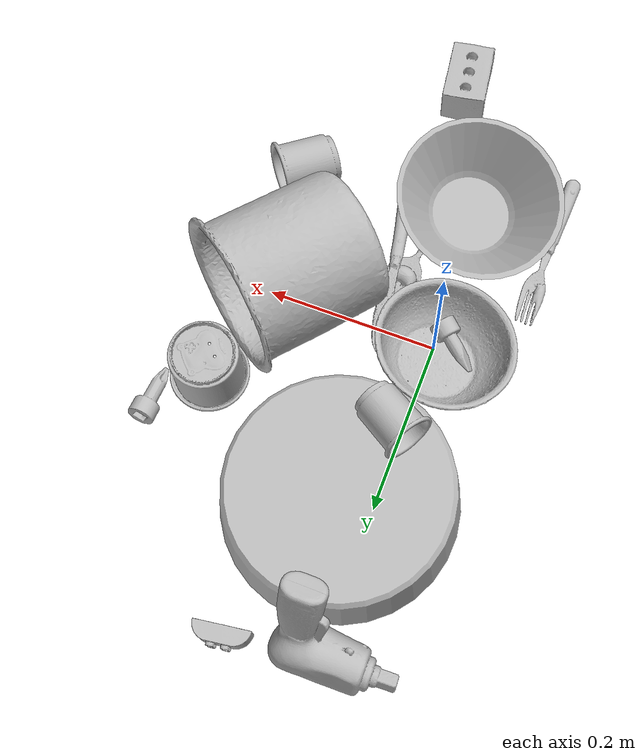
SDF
<sdf version="1.4">
  <world name="default">
    <light name="light1" type="point">
      <pose>0 0 1 0 0 0</pose>
      <diffuse>3 3 3 1</diffuse>
      <specular>3 3 3 1</specular>
    </light>
    <light name="light2" type="point">
      <pose>0 0.5 2 0 0 0</pose>
      <diffuse>1 1 1 1</diffuse>
      <specular>1 1 1 1</specular>
    </light>
    <light name="light3" type="point">
      <pose>0 0.5 2 0 0 0</pose>
      <diffuse>3 3 3 1</diffuse>
      <specular>3 3 3 1</specular>
    </light>
    <scene>
      <ambient>0.7 0.7 0.7</ambient>
    </scene>
    <model name="plate1">
      <link name="link_plate1">
        <collision name="default">
          <geometry>
            <mesh>
              <uri>model://pan_tefal/collision_meshes/collision.obj</uri>
              <scale>1.0 1.0 1.0</scale>
            </mesh>
          </geometry>
          <surface>
            <friction>
              <ode>
                <mu>0.5</mu>
                <mu2>0.5</mu2>
              </ode>
            </friction>
          <contact>
        <ode>
            <max_vel>0</max_vel>
            <min_depth>0.0001</min_depth>
            <kp>1e8</kp>
        </ode>
    </contact></surface>
        </collision>
        <visual name="default">
          <geometry>
            <mesh>
              <uri>model://pan_tefal/visual_meshes/visual.dae</uri>
              <scale>1.0 1.0 1.0</scale>
            </mesh>
          </geometry>
        </visual>
        <inertial>
          <mass>1.356081485748291</mass>
          <pose>-0.00018001878925133497 3.2792810088722035e-05 -0.008514934219419956 0.000819032333381865 -0.0003301471985614655 -0.33185384828338066</pose>
          <inertia>
            <ixx>0.009360965</ixx>
            <iyy>0.009421317</iyy>
            <izz>0.017231734</izz>
            <ixy>0</ixy>
            <ixz>0</ixz>
            <iyz>0</iyz>
          </inertia>
        </inertial>
      </link>
      <pose>0.036617081612348557 0.20486468076705933 0.03782201185822487 3.1415925545765546 2.702579169850521e-08 2.574027518876043</pose>
    </model>
    <model name="cup1">
      <link name="link_cup1">
        <collision name="default">
          <geometry>
            <mesh>
              <uri>model://mug/collision_meshes/collision.obj</uri>
              <scale>2.0 2.0 2.0</scale>
            </mesh>
          </geometry>
          <surface>
            <friction>
              <ode>
                <mu>0.5</mu>
                <mu2>0.5</mu2>
              </ode>
            </friction>
          <contact>
        <ode>
            <max_vel>0</max_vel>
            <min_depth>0.0001</min_depth>
            <kp>1e8</kp>
        </ode>
    </contact></surface>
        </collision>
        <visual name="default">
          <geometry>
            <mesh>
              <uri>model://mug/visual_meshes/visual.dae</uri>
              <scale>2.0 2.0 2.0</scale>
            </mesh>
          </geometry>
        </visual>
        <inertial>
          <mass>1.425228476524353</mass>
          <pose>0.019143342971801758 0.0016286519821733236 -0.021894657984375954 -0.12983169455958588 0.08737743422724535 0.05507285753370488</pose>
          <inertia>
            <ixx>0.005662833</ixx>
            <iyy>0.0063250507</iyy>
            <izz>0.0073150056</izz>
            <ixy>0</ixy>
            <ixz>0</ixz>
            <iyz>0</iyz>
          </inertia>
        </inertial>
      </link>
      <pose>0.18721047043800354 -0.018541429191827774 0.07338301092386246 1.4728046089953337 -0.5622074144993375 2.507778200625545</pose>
    </model>
    <model name="silverware1">
      <link name="link_silverware1">
        <collision name="default">
          <geometry>
            <mesh>
              <uri>model://spoon/collision_meshes/collision.obj</uri>
              <scale>1.0 1.0 1.0</scale>
            </mesh>
          </geometry>
          <surface>
            <friction>
              <ode>
                <mu>0.5</mu>
                <mu2>0.5</mu2>
              </ode>
            </friction>
          <contact>
        <ode>
            <max_vel>0</max_vel>
            <min_depth>0.0001</min_depth>
            <kp>1e8</kp>
        </ode>
    </contact></surface>
        </collision>
        <visual name="default">
          <geometry>
            <mesh>
              <uri>model://spoon/visual_meshes/visual.dae</uri>
              <scale>1.0 1.0 1.0</scale>
            </mesh>
          </geometry>
        </visual>
        <inertial>
          <mass>0.031423501670360565</mass>
          <pose>-0.005526318680495024 -0.0016034176805987954 -0.000727165665011853 0.035217765619004186 -0.03906586018731898 0.006150610672177042</pose>
          <inertia>
            <ixx>1.7478262e-06</ixx>
            <iyy>0.0001195654</iyy>
            <izz>0.000120427336</izz>
            <ixy>0</ixy>
            <ixz>0</ixz>
            <iyz>0</iyz>
          </inertia>
        </inertial>
      </link>
      <pose>0.04552711918950081 -0.12939073145389557 0.009237215854227543 -0.15178606986864232 -0.006006878600764204 1.3226964080891472</pose>
    </model>
    <model name="silverware2">
      <link name="link_silverware2">
        <collision name="default">
          <geometry>
            <mesh>
              <uri>model://fork/collision_meshes/collision.obj</uri>
              <scale>1.0 1.0 1.0</scale>
            </mesh>
          </geometry>
          <surface>
            <friction>
              <ode>
                <mu>0.5</mu>
                <mu2>0.5</mu2>
              </ode>
            </friction>
          <contact>
        <ode>
            <max_vel>0</max_vel>
            <min_depth>0.0001</min_depth>
            <kp>1e8</kp>
        </ode>
    </contact></surface>
        </collision>
        <visual name="default">
          <geometry>
            <mesh>
              <uri>model://fork/visual_meshes/visual.dae</uri>
              <scale>1.0 1.0 1.0</scale>
            </mesh>
          </geometry>
        </visual>
        <inertial>
          <mass>0.02368462271988392</mass>
          <pose>-0.02957003191113472 0.00046588238910771906 0.00032188621116802096 -0.013550757689210725 -0.010977831639922976 0.014453892765665301</pose>
          <inertia>
            <ixx>8.3028004e-07</ixx>
            <iyy>6.183376e-05</iyy>
            <izz>6.220513e-05</izz>
            <ixy>0</ixy>
            <ixz>0</ixz>
            <iyz>0</iyz>
          </inertia>
        </inertial>
      </link>
      <pose>-0.08706783503293991 -0.16044174134731293 0.0056901611387729645 -0.17563792318810686 0.025705169902974525 1.5460247807117016</pose>
    </model>
    <model name="silverware3">
      <link name="link_silverware3">
        <collision name="default">
          <geometry>
            <mesh>
              <uri>model://knife/collision_meshes/collision.obj</uri>
              <scale>1.0 1.0 1.0</scale>
            </mesh>
          </geometry>
          <surface>
            <friction>
              <ode>
                <mu>0.5</mu>
                <mu2>0.5</mu2>
              </ode>
            </friction>
          <contact>
        <ode>
            <max_vel>0</max_vel>
            <min_depth>0.0001</min_depth>
            <kp>1e8</kp>
        </ode>
    </contact></surface>
        </collision>
        <visual name="default">
          <geometry>
            <mesh>
              <uri>model://knife/visual_meshes/visual.dae</uri>
              <scale>1.0 1.0 1.0</scale>
            </mesh>
          </geometry>
        </visual>
        <inertial>
          <mass>0.023530498147010803</mass>
          <pose>-0.023785250261425972 0.0015275124460458755 5.062020863988437e-05 0.07305757972864607 0.01724841573343299 -0.007409825279630946</pose>
          <inertia>
            <ixx>6.678909e-07</ixx>
            <iyy>9.040038e-05</iyy>
            <izz>9.0615475e-05</izz>
            <ixy>0</ixy>
            <ixz>0</ixz>
            <iyz>0</iyz>
          </inertia>
        </inertial>
      </link>
      <pose>0.07535324990749359 -0.06311523169279099 0.023827936500310898 -0.07624274059889437 -0.16172548266324727 1.746465180238771</pose>
    </model>
    <model name="cup3">
      <link name="link_cup3">
        <collision name="default">
          <geometry>
            <mesh>
              <uri>model://b_cups/collision_meshes/collision.obj</uri>
              <scale>1.0 1.0 1.0</scale>
            </mesh>
          </geometry>
          <surface>
            <friction>
              <ode>
                <mu>0.5</mu>
                <mu2>0.5</mu2>
              </ode>
            </friction>
          <contact>
        <ode>
            <max_vel>0</max_vel>
            <min_depth>0.0001</min_depth>
            <kp>1e8</kp>
        </ode>
    </contact></surface>
        </collision>
        <visual name="default">
          <geometry>
            <mesh>
              <uri>model://b_cups/visual_meshes/visual.dae</uri>
              <scale>1.0 1.0 1.0</scale>
            </mesh>
          </geometry>
        </visual>
        <inertial>
          <mass>0.033049143850803375</mass>
          <pose>0.0005182002205401659 0.001805859967134893 -0.0013381808530539274 0.11356265792291019 0.03872585472979472 -0.3457023826899558</pose>
          <inertia>
            <ixx>2.1632983e-05</ixx>
            <iyy>2.1222275e-05</iyy>
            <izz>1.8203747e-05</izz>
            <ixy>0</ixy>
            <ixz>0</ixz>
            <iyz>0</iyz>
          </inertia>
        </inertial>
      </link>
      <pose>0.010471225716173649 0.12269791215658188 0.1035035029053688 -1.4696527085877549 0.1242837265724523 1.0389710312629565</pose>
    </model>
    <model name="cup4">
      <link name="link_cup4">
        <collision name="default">
          <geometry>
            <mesh>
              <uri>model://h_cups/collision_meshes/collision.obj</uri>
              <scale>1.0 1.0 1.0</scale>
            </mesh>
          </geometry>
          <surface>
            <friction>
              <ode>
                <mu>0.5</mu>
                <mu2>0.5</mu2>
              </ode>
            </friction>
          <contact>
        <ode>
            <max_vel>0</max_vel>
            <min_depth>0.0001</min_depth>
            <kp>1e8</kp>
        </ode>
    </contact></surface>
        </collision>
        <visual name="default">
          <geometry>
            <mesh>
              <uri>model://h_cups/visual_meshes/visual.dae</uri>
              <scale>1.0 1.0 1.0</scale>
            </mesh>
          </geometry>
        </visual>
        <inertial>
          <mass>0.11347958445549011</mass>
          <pose>-2.7030910132452846e-05 0.00023018615320324898 -0.0018405403243377805 -0.02436217983877791 0.06545222634893223 0.12885210457354207</pose>
          <inertia>
            <ixx>0.0001465536</ixx>
            <iyy>0.00014480477</iyy>
            <izz>0.00015369456</izz>
            <ixy>0</ixy>
            <ixz>0</ixz>
            <iyz>0</iyz>
          </inertia>
        </inertial>
      </link>
      <pose>0.22868038713932037 0.11710628867149353 0.03753003850579262 3.141590293668037 -2.449806858946405e-06 0.8528646214266259</pose>
    </model>
    <model name="cup5">
      <link name="link_cup5">
        <collision name="default">
          <geometry>
            <mesh>
              <uri>model://d_cups/collision_meshes/collision.obj</uri>
              <scale>1.0 1.0 1.0</scale>
            </mesh>
          </geometry>
          <surface>
            <friction>
              <ode>
                <mu>0.5</mu>
                <mu2>0.5</mu2>
              </ode>
            </friction>
          <contact>
        <ode>
            <max_vel>0</max_vel>
            <min_depth>0.0001</min_depth>
            <kp>1e8</kp>
        </ode>
    </contact></surface>
        </collision>
        <visual name="default">
          <geometry>
            <mesh>
              <uri>model://d_cups/visual_meshes/visual.dae</uri>
              <scale>1.0 1.0 1.0</scale>
            </mesh>
          </geometry>
        </visual>
        <inertial>
          <mass>0.039110079407691956</mass>
          <pose>0.0008068050956353545 0.0019117392366752028 -0.0022666517179459333 0.24011224021147495 -0.247107611945545 0.594295747375292</pose>
          <inertia>
            <ixx>3.2744327e-05</ixx>
            <iyy>3.2649565e-05</iyy>
            <izz>2.9639183e-05</izz>
            <ixy>0</ixy>
            <ixz>0</ixz>
            <iyz>0</iyz>
          </inertia>
        </inertial>
      </link>
      <pose>0.21497802436351776 -0.15531288087368011 0.03244723379611969 -1.4810614025626936 0.3512741993985904 -0.8480023954241984</pose>
    </model>
    <model name="bowl1">
      <link name="link_bowl1">
        <collision name="default">
          <geometry>
            <mesh>
              <uri>model://bowl/collision_meshes/collision.obj</uri>
              <scale>1.0 1.0 1.0</scale>
            </mesh>
          </geometry>
          <surface>
            <friction>
              <ode>
                <mu>0.5</mu>
                <mu2>0.5</mu2>
              </ode>
            </friction>
          <contact>
        <ode>
            <max_vel>0</max_vel>
            <min_depth>0.0001</min_depth>
            <kp>1e8</kp>
        </ode>
    </contact></surface>
        </collision>
        <visual name="default">
          <geometry>
            <mesh>
              <uri>model://bowl/visual_meshes/visual.dae</uri>
              <scale>1.0 1.0 1.0</scale>
            </mesh>
          </geometry>
        </visual>
        <inertial>
          <mass>0.04740063101053238</mass>
          <pose>0.00020445372501853853 -0.001030205050483346 -0.000804265437182039 -0.015764138065403298 0.014546740803255881 0.7140373892972721</pose>
          <inertia>
            <ixx>0.00010888298</ixx>
            <iyy>0.000106450105</iyy>
            <izz>0.00018317858</izz>
            <ixy>0</ixy>
            <ixz>0</ixz>
            <iyz>0</iyz>
          </inertia>
        </inertial>
      </link>
      <pose>-0.012664085254073143 0.012958652339875698 0.035477589815855026 0.11874895828740922 0.153418141486646 -1.5115103712124895</pose>
    </model>
    <model name="bowl2">
      <link name="link_bowl2">
        <collision name="default">
          <geometry>
            <mesh>
              <uri>model://bowl_a/collision_meshes/collision.obj</uri>
              <scale>1.0 1.0 1.0</scale>
            </mesh>
          </geometry>
          <surface>
            <friction>
              <ode>
                <mu>0.5</mu>
                <mu2>0.5</mu2>
              </ode>
            </friction>
          <contact>
        <ode>
            <max_vel>0</max_vel>
            <min_depth>0.0001</min_depth>
            <kp>1e8</kp>
        </ode>
    </contact></surface>
        </collision>
        <visual name="default">
          <geometry>
            <mesh>
              <uri>model://bowl_a/visual_meshes/visual.dae</uri>
              <scale>1.0 1.0 1.0</scale>
            </mesh>
          </geometry>
        </visual>
        <inertial>
          <mass>0.4596928358078003</mass>
          <pose>0.0002786756376735866 4.731212538899854e-05 -0.001376529224216938 -0.0009805332698969178 -0.0010938264579112213 -0.1912378887702168</pose>
          <inertia>
            <ixx>0.0013087663</ixx>
            <iyy>0.0013168014</iyy>
            <izz>0.002327691</izz>
            <ixy>0</ixy>
            <ixz>0</ixz>
            <iyz>0</iyz>
          </inertia>
        </inertial>
      </link>
      <pose>0.009284868836402893 -0.16969557106494904 0.039188262075185776 -0.0720351858789637 0.14813169203265503 2.3265970438549397</pose>
    </model>
    <model name="toy1">
      <link name="link_toy1">
        <collision name="default">
          <geometry>
            <mesh>
              <uri>model://d_toy_airplane/collision_meshes/collision.obj</uri>
              <scale>1.0 1.0 1.0</scale>
            </mesh>
          </geometry>
          <surface>
            <friction>
              <ode>
                <mu>0.5</mu>
                <mu2>0.5</mu2>
              </ode>
            </friction>
          <contact>
        <ode>
            <max_vel>0</max_vel>
            <min_depth>0.0001</min_depth>
            <kp>1e8</kp>
        </ode>
    </contact></surface>
        </collision>
        <visual name="default">
          <geometry>
            <mesh>
              <uri>model://d_toy_airplane/visual_meshes/visual.dae</uri>
              <scale>1.0 1.0 1.0</scale>
            </mesh>
          </geometry>
        </visual>
        <inertial>
          <mass>0.017302583903074265</mass>
          <pose>9.410295751877129e-05 -5.809326466987841e-05 -0.011728093028068542 0.00026573120399734447 0.004679044314999465 0.5192011935173154</pose>
          <inertia>
            <ixx>5.1869783e-06</ixx>
            <iyy>5.190892e-06</iyy>
            <izz>1.5659823e-06</izz>
            <ixy>0</ixy>
            <ixz>0</ixz>
            <iyz>0</iyz>
          </inertia>
        </inertial>
      </link>
      <pose>0.2770567238330841 0.16297990083694458 0.011741189286112785 -1.9079266679354858 -0.9252628833700224 -2.8936876488779157</pose>
    </model>
    <model name="toy2">
      <link name="link_toy2">
        <collision name="default">
          <geometry>
            <mesh>
              <uri>model://b_toy_airplane/collision_meshes/collision.obj</uri>
              <scale>1.0 1.0 1.0</scale>
            </mesh>
          </geometry>
          <surface>
            <friction>
              <ode>
                <mu>0.5</mu>
                <mu2>0.5</mu2>
              </ode>
            </friction>
          <contact>
        <ode>
            <max_vel>0</max_vel>
            <min_depth>0.0001</min_depth>
            <kp>1e8</kp>
        </ode>
    </contact></surface>
        </collision>
        <visual name="default">
          <geometry>
            <mesh>
              <uri>model://b_toy_airplane/visual_meshes/visual.dae</uri>
              <scale>1.0 1.0 1.0</scale>
            </mesh>
          </geometry>
        </visual>
        <inertial>
          <mass>0.45341360569000244</mass>
          <pose>0.00508136535063386 0.004015584941953421 0.00954306498169899 -0.04001809497736226 -0.04022180630889015 -0.560150289687741</pose>
          <inertia>
            <ixx>0.0008417707</ixx>
            <iyy>0.00033646397</iyy>
            <izz>0.0010472467</izz>
            <ixy>0</ixy>
            <ixz>0</ixz>
            <iyz>0</iyz>
          </inertia>
        </inertial>
      </link>
      <pose>0.009068747982382774 0.36443600058555603 0.05598224326968193 -1.949074376839594 -0.008104914351445605 3.126178431457109</pose>
    </model>
    <model name="toy3">
      <link name="link_toy3">
        <collision name="default">
          <geometry>
            <mesh>
              <uri>model://a_lego_duplo/collision_meshes/collision.obj</uri>
              <scale>1.0 1.0 1.0</scale>
            </mesh>
          </geometry>
          <surface>
            <friction>
              <ode>
                <mu>0.5</mu>
                <mu2>0.5</mu2>
              </ode>
            </friction>
          <contact>
        <ode>
            <max_vel>0</max_vel>
            <min_depth>0.0001</min_depth>
            <kp>1e8</kp>
        </ode>
    </contact></surface>
        </collision>
        <visual name="default">
          <geometry>
            <mesh>
              <uri>model://a_lego_duplo/visual_meshes/visual.dae</uri>
              <scale>1.0 1.0 1.0</scale>
            </mesh>
          </geometry>
        </visual>
        <inertial>
          <mass>0.019445955753326416</mass>
          <pose>-0.00011337668547639623 0.0001851754350354895 0.00036926064058206975 -0.014116968054253443 -0.00012565964371363686 6.142473690124929e-05</pose>
          <inertia>
            <ixx>2.4931269e-06</ixx>
            <iyy>5.58515e-06</iyy>
            <izz>6.9184516e-06</izz>
            <ixy>0</ixy>
            <ixz>0</ixz>
            <iyz>0</iyz>
          </inertia>
        </inertial>
      </link>
      <pose>0.10169235616922379 0.38551148772239685 0.016106296330690384 1.5716335667653762 -0.00018744594973445236 -3.0037376669387865</pose>
    </model>
    <model name="toy4">
      <link name="link_toy4">
        <collision name="default">
          <geometry>
            <mesh>
              <uri>model://foam_brick/collision_meshes/collision.obj</uri>
              <scale>1.0 1.0 1.0</scale>
            </mesh>
          </geometry>
          <surface>
            <friction>
              <ode>
                <mu>0.5</mu>
                <mu2>0.5</mu2>
              </ode>
            </friction>
          <contact>
        <ode>
            <max_vel>0</max_vel>
            <min_depth>0.0001</min_depth>
            <kp>1e8</kp>
        </ode>
    </contact></surface>
        </collision>
        <visual name="default">
          <geometry>
            <mesh>
              <uri>model://foam_brick/visual_meshes/visual.dae</uri>
              <scale>1.0 1.0 1.0</scale>
            </mesh>
          </geometry>
        </visual>
        <inertial>
          <mass>0.18476375937461853</mass>
          <pose>-0.00025224717683158815 0.0003458433784544468 -0.00025321010616607964 -0.2940193708875024 0.01727444338713918 -0.0007449870082442464</pose>
          <inertia>
            <ixx>8.070827e-05</ixx>
            <iyy>0.00012885487</iyy>
            <izz>0.00013049248</izz>
            <ixy>0</ixy>
            <ixz>0</ixz>
            <iyz>0</iyz>
          </inertia>
        </inertial>
      </link>
      <pose>0.07320504635572433 -0.33105534315109253 0.025922799482941628 0.013417071921574803 0.0041530365497414075 1.712886615648452</pose>
    </model>
    <model name="toy5">
      <link name="link_toy5">
        <collision name="default">
          <geometry>
            <mesh>
              <uri>model://e_toy_airplane/collision_meshes/collision.obj</uri>
              <scale>1.0 1.0 1.0</scale>
            </mesh>
          </geometry>
          <surface>
            <friction>
              <ode>
                <mu>0.5</mu>
                <mu2>0.5</mu2>
              </ode>
            </friction>
          <contact>
        <ode>
            <max_vel>0</max_vel>
            <min_depth>0.0001</min_depth>
            <kp>1e8</kp>
        </ode>
    </contact></surface>
        </collision>
        <visual name="default">
          <geometry>
            <mesh>
              <uri>model://e_toy_airplane/visual_meshes/visual.dae</uri>
              <scale>1.0 1.0 1.0</scale>
            </mesh>
          </geometry>
        </visual>
        <inertial>
          <mass>0.01085815578699112</mass>
          <pose>0.00011740455374820158 -2.248299279017374e-05 -0.011187206953763962 0.005518501127689679 0.009228289957601814 0.15041514141603637</pose>
          <inertia>
            <ixx>3.3140323e-06</ixx>
            <iyy>3.2801318e-06</iyy>
            <izz>9.959974e-07</izz>
            <ixy>0</ixy>
            <ixz>0</ixz>
            <iyz>0</iyz>
          </inertia>
        </inertial>
      </link>
      <pose>-0.023858489468693733 -0.004630886949598789 0.01812463440001011 1.7251961197324996 -0.41446550487779066 -2.3418710465956876</pose>
    </model>
  <physics type="ode">
      <max_contacts>50</max_contacts>
      <ode>
        <solver>
          <type>quick</type>
          <iters>75</iters>
        </solver>
        <constraints>
          <contact_max_correcting_vel>0</contact_max_correcting_vel>
          <contact_surface_layer>0</contact_surface_layer>
        </constraints>
      </ode>
    </physics></world>
</sdf>
